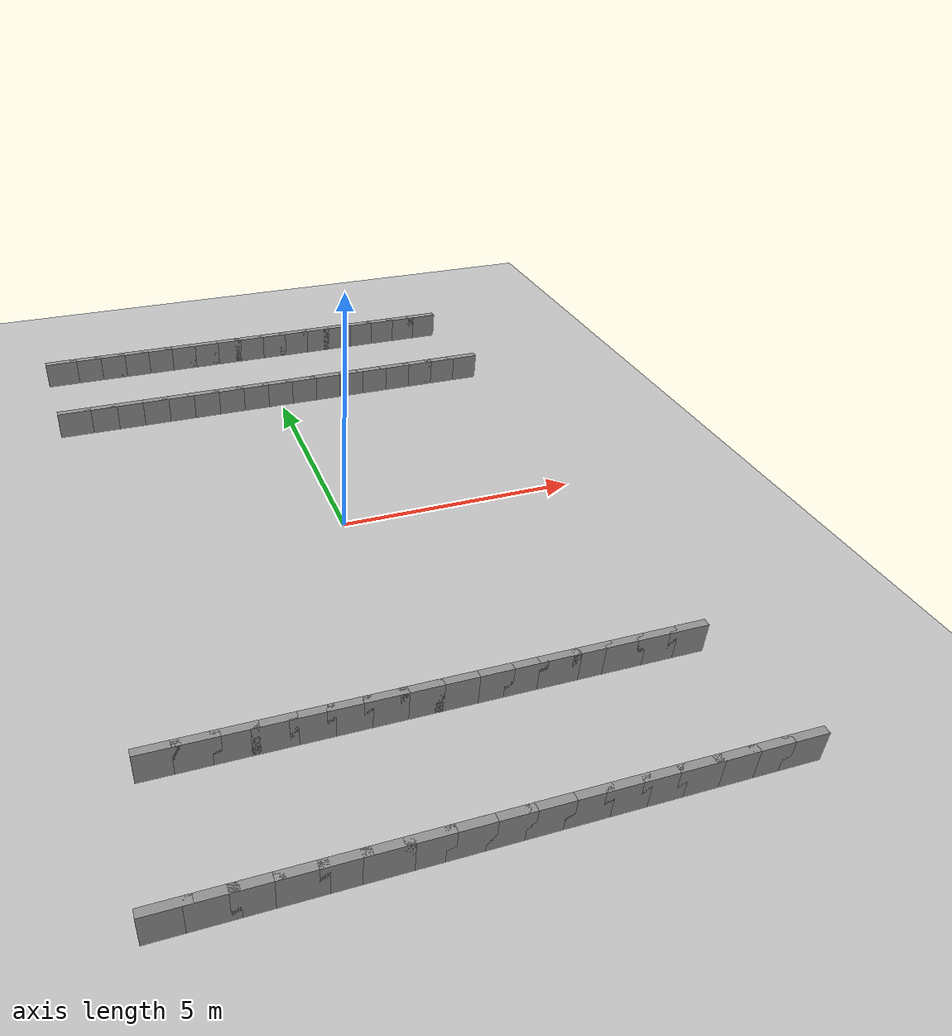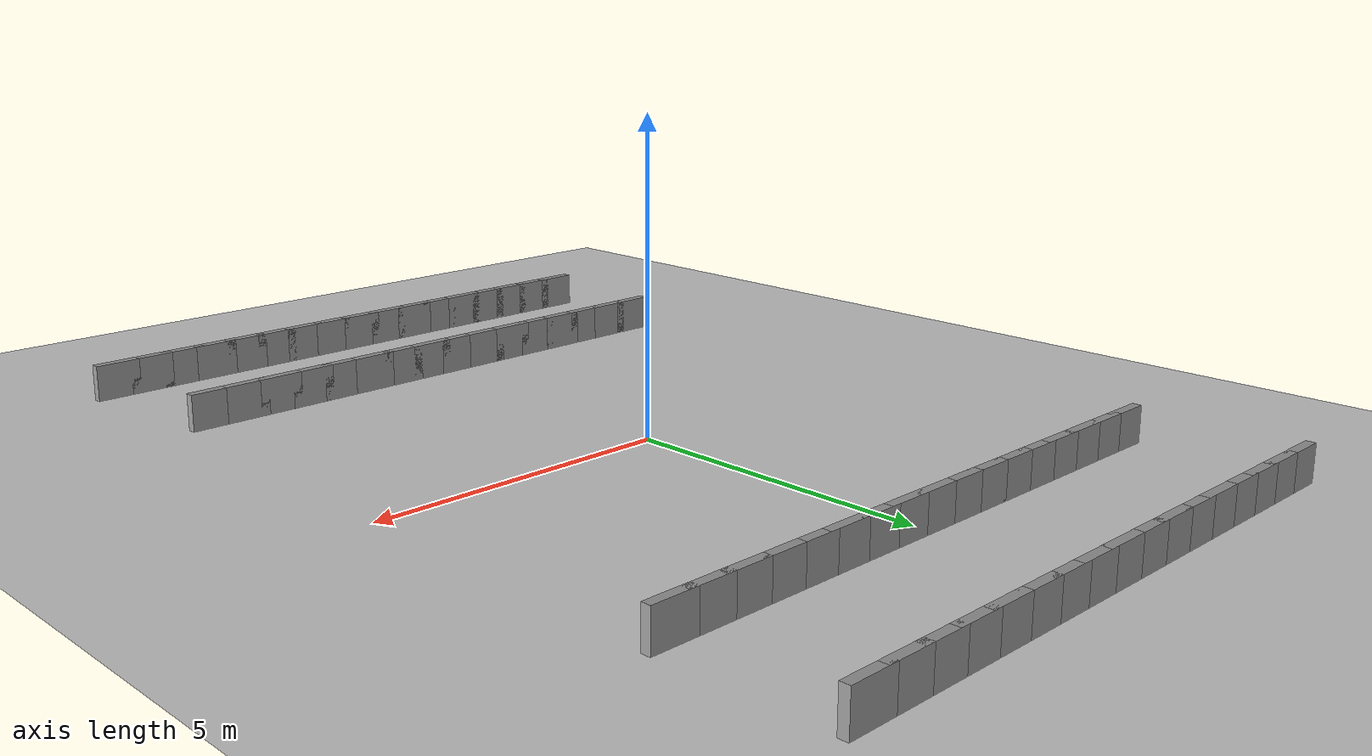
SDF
<sdf version="1.7">
 <world name="default">
  <model name="ground_plane">
   <static>1</static>
   <link name="link">
    <collision name="collision">
     <geometry><plane><normal>0 0 1</normal><size>100 100</size></plane></geometry>
     <surface><friction><ode><mu>100</mu><mu2>50</mu2></ode></friction></surface>
    </collision>
    <visual name="visual">
     <cast_shadows>0</cast_shadows>
     <geometry><plane><normal>0 0 1</normal><size>100 100</size></plane></geometry>
     <material>
      <script><uri>file://media/materials/scripts/gazebo.material</uri><name>Gazebo/Grey</name></script>
     </material>
    </visual>
   </link>
  </model>
  <model name="rand_rrect_02">
   <link name="Wall_7">
    <collision name="Wall_7_Collision">
     <geometry><box><size>0.7500 0.1500 0.6000</size></box></geometry>
     <pose>0 0 0.3000 0 -0 0</pose>
    </collision>
    <visual name="Wall_7_Visual">
     <pose>0 0 0.3000 0 -0 0</pose>
     <geometry><box><size>0.7500 0.1500 0.6000</size></box></geometry>
     <material>
      <script><uri>file://media/materials/scripts/gazebo.material</uri><name>Gazebo/Grey</name></script>
      <ambient>1 1 1 1</ambient>
     </material>
    </visual>
    <pose>4.7126 5.2483 0 0 -0 3.14159</pose>
   </link>
   <link name="Wall_8">
    <collision name="Wall_8_Collision">
     <geometry><box><size>0.7500 0.1500 0.6000</size></box></geometry>
     <pose>0 0 0.3000 0 -0 0</pose>
    </collision>
    <visual name="Wall_8_Visual">
     <pose>0 0 0.3000 0 -0 0</pose>
     <geometry><box><size>0.7500 0.1500 0.6000</size></box></geometry>
     <material>
      <script><uri>file://media/materials/scripts/gazebo.material</uri><name>Gazebo/Grey</name></script>
      <ambient>1 1 1 1</ambient>
     </material>
    </visual>
    <pose>4.1126 5.2483 0 0 -0 3.14159</pose>
   </link>
   <link name="Wall_9">
    <collision name="Wall_9_Collision">
     <geometry><box><size>0.7500 0.1500 0.6000</size></box></geometry>
     <pose>0 0 0.3000 0 -0 0</pose>
    </collision>
    <visual name="Wall_9_Visual">
     <pose>0 0 0.3000 0 -0 0</pose>
     <geometry><box><size>0.7500 0.1500 0.6000</size></box></geometry>
     <material>
      <script><uri>file://media/materials/scripts/gazebo.material</uri><name>Gazebo/Grey</name></script>
      <ambient>1 1 1 1</ambient>
     </material>
    </visual>
    <pose>3.5126 5.2483 0 0 -0 3.14159</pose>
   </link>
   <link name="Wall_10">
    <collision name="Wall_10_Collision">
     <geometry><box><size>0.7500 0.1500 0.6000</size></box></geometry>
     <pose>0 0 0.3000 0 -0 0</pose>
    </collision>
    <visual name="Wall_10_Visual">
     <pose>0 0 0.3000 0 -0 0</pose>
     <geometry><box><size>0.7500 0.1500 0.6000</size></box></geometry>
     <material>
      <script><uri>file://media/materials/scripts/gazebo.material</uri><name>Gazebo/Grey</name></script>
      <ambient>1 1 1 1</ambient>
     </material>
    </visual>
    <pose>2.9126 5.2483 0 0 -0 3.14159</pose>
   </link>
   <link name="Wall_11">
    <collision name="Wall_11_Collision">
     <geometry><box><size>0.7500 0.1500 0.6000</size></box></geometry>
     <pose>0 0 0.3000 0 -0 0</pose>
    </collision>
    <visual name="Wall_11_Visual">
     <pose>0 0 0.3000 0 -0 0</pose>
     <geometry><box><size>0.7500 0.1500 0.6000</size></box></geometry>
     <material>
      <script><uri>file://media/materials/scripts/gazebo.material</uri><name>Gazebo/Grey</name></script>
      <ambient>1 1 1 1</ambient>
     </material>
    </visual>
    <pose>2.3126 5.2483 0 0 -0 3.14159</pose>
   </link>
   <link name="Wall_12">
    <collision name="Wall_12_Collision">
     <geometry><box><size>0.7500 0.1500 0.6000</size></box></geometry>
     <pose>0 0 0.3000 0 -0 0</pose>
    </collision>
    <visual name="Wall_12_Visual">
     <pose>0 0 0.3000 0 -0 0</pose>
     <geometry><box><size>0.7500 0.1500 0.6000</size></box></geometry>
     <material>
      <script><uri>file://media/materials/scripts/gazebo.material</uri><name>Gazebo/Grey</name></script>
      <ambient>1 1 1 1</ambient>
     </material>
    </visual>
    <pose>1.7126 5.2483 0 0 -0 3.14159</pose>
   </link>
   <link name="Wall_13">
    <collision name="Wall_13_Collision">
     <geometry><box><size>0.7500 0.1500 0.6000</size></box></geometry>
     <pose>0 0 0.3000 0 -0 0</pose>
    </collision>
    <visual name="Wall_13_Visual">
     <pose>0 0 0.3000 0 -0 0</pose>
     <geometry><box><size>0.7500 0.1500 0.6000</size></box></geometry>
     <material>
      <script><uri>file://media/materials/scripts/gazebo.material</uri><name>Gazebo/Grey</name></script>
      <ambient>1 1 1 1</ambient>
     </material>
    </visual>
    <pose>1.1126 5.2483 0 0 -0 3.14159</pose>
   </link>
   <link name="Wall_14">
    <collision name="Wall_14_Collision">
     <geometry><box><size>0.7500 0.1500 0.6000</size></box></geometry>
     <pose>0 0 0.3000 0 -0 0</pose>
    </collision>
    <visual name="Wall_14_Visual">
     <pose>0 0 0.3000 0 -0 0</pose>
     <geometry><box><size>0.7500 0.1500 0.6000</size></box></geometry>
     <material>
      <script><uri>file://media/materials/scripts/gazebo.material</uri><name>Gazebo/Grey</name></script>
      <ambient>1 1 1 1</ambient>
     </material>
    </visual>
    <pose>0.5126 5.2483 0 0 -0 3.14159</pose>
   </link>
   <link name="Wall_15">
    <collision name="Wall_15_Collision">
     <geometry><box><size>0.7500 0.1500 0.6000</size></box></geometry>
     <pose>0 0 0.3000 0 -0 0</pose>
    </collision>
    <visual name="Wall_15_Visual">
     <pose>0 0 0.3000 0 -0 0</pose>
     <geometry><box><size>0.7500 0.1500 0.6000</size></box></geometry>
     <material>
      <script><uri>file://media/materials/scripts/gazebo.material</uri><name>Gazebo/Grey</name></script>
      <ambient>1 1 1 1</ambient>
     </material>
    </visual>
    <pose>-0.0874 5.2483 0 0 -0 3.14159</pose>
   </link>
   <link name="Wall_16">
    <collision name="Wall_16_Collision">
     <geometry><box><size>0.7500 0.1500 0.6000</size></box></geometry>
     <pose>0 0 0.3000 0 -0 0</pose>
    </collision>
    <visual name="Wall_16_Visual">
     <pose>0 0 0.3000 0 -0 0</pose>
     <geometry><box><size>0.7500 0.1500 0.6000</size></box></geometry>
     <material>
      <script><uri>file://media/materials/scripts/gazebo.material</uri><name>Gazebo/Grey</name></script>
      <ambient>1 1 1 1</ambient>
     </material>
    </visual>
    <pose>-0.6874 5.2483 0 0 -0 3.14159</pose>
   </link>
   <link name="Wall_17">
    <collision name="Wall_17_Collision">
     <geometry><box><size>0.7500 0.1500 0.6000</size></box></geometry>
     <pose>0 0 0.3000 0 -0 0</pose>
    </collision>
    <visual name="Wall_17_Visual">
     <pose>0 0 0.3000 0 -0 0</pose>
     <geometry><box><size>0.7500 0.1500 0.6000</size></box></geometry>
     <material>
      <script><uri>file://media/materials/scripts/gazebo.material</uri><name>Gazebo/Grey</name></script>
      <ambient>1 1 1 1</ambient>
     </material>
    </visual>
    <pose>-1.2874 5.2483 0 0 -0 3.14159</pose>
   </link>
   <link name="Wall_18">
    <collision name="Wall_18_Collision">
     <geometry><box><size>0.7500 0.1500 0.6000</size></box></geometry>
     <pose>0 0 0.3000 0 -0 0</pose>
    </collision>
    <visual name="Wall_18_Visual">
     <pose>0 0 0.3000 0 -0 0</pose>
     <geometry><box><size>0.7500 0.1500 0.6000</size></box></geometry>
     <material>
      <script><uri>file://media/materials/scripts/gazebo.material</uri><name>Gazebo/Grey</name></script>
      <ambient>1 1 1 1</ambient>
     </material>
    </visual>
    <pose>-1.8874 5.2483 0 0 -0 3.14159</pose>
   </link>
   <link name="Wall_19">
    <collision name="Wall_19_Collision">
     <geometry><box><size>0.7500 0.1500 0.6000</size></box></geometry>
     <pose>0 0 0.3000 0 -0 0</pose>
    </collision>
    <visual name="Wall_19_Visual">
     <pose>0 0 0.3000 0 -0 0</pose>
     <geometry><box><size>0.7500 0.1500 0.6000</size></box></geometry>
     <material>
      <script><uri>file://media/materials/scripts/gazebo.material</uri><name>Gazebo/Grey</name></script>
      <ambient>1 1 1 1</ambient>
     </material>
    </visual>
    <pose>-2.4874 5.2483 0 0 -0 3.14159</pose>
   </link>
   <link name="Wall_20">
    <collision name="Wall_20_Collision">
     <geometry><box><size>0.7500 0.1500 0.6000</size></box></geometry>
     <pose>0 0 0.3000 0 -0 0</pose>
    </collision>
    <visual name="Wall_20_Visual">
     <pose>0 0 0.3000 0 -0 0</pose>
     <geometry><box><size>0.7500 0.1500 0.6000</size></box></geometry>
     <material>
      <script><uri>file://media/materials/scripts/gazebo.material</uri><name>Gazebo/Grey</name></script>
      <ambient>1 1 1 1</ambient>
     </material>
    </visual>
    <pose>-3.0874 5.2483 0 0 -0 3.14159</pose>
   </link>
   <link name="Wall_21">
    <collision name="Wall_21_Collision">
     <geometry><box><size>0.7500 0.1500 0.6000</size></box></geometry>
     <pose>0 0 0.3000 0 -0 0</pose>
    </collision>
    <visual name="Wall_21_Visual">
     <pose>0 0 0.3000 0 -0 0</pose>
     <geometry><box><size>0.7500 0.1500 0.6000</size></box></geometry>
     <material>
      <script><uri>file://media/materials/scripts/gazebo.material</uri><name>Gazebo/Grey</name></script>
      <ambient>1 1 1 1</ambient>
     </material>
    </visual>
    <pose>-3.6874 5.2483 0 0 -0 3.14159</pose>
   </link>
   <link name="Wall_22">
    <collision name="Wall_22_Collision">
     <geometry><box><size>0.7500 0.1500 0.6000</size></box></geometry>
     <pose>0 0 0.3000 0 -0 0</pose>
    </collision>
    <visual name="Wall_22_Visual">
     <pose>0 0 0.3000 0 -0 0</pose>
     <geometry><box><size>0.7500 0.1500 0.6000</size></box></geometry>
     <material>
      <script><uri>file://media/materials/scripts/gazebo.material</uri><name>Gazebo/Grey</name></script>
      <ambient>1 1 1 1</ambient>
     </material>
    </visual>
    <pose>-4.2874 5.2483 0 0 -0 3.14159</pose>
   </link>
   <link name="Wall_23">
    <collision name="Wall_23_Collision">
     <geometry><box><size>0.7500 0.1500 0.6000</size></box></geometry>
     <pose>0 0 0.3000 0 -0 0</pose>
    </collision>
    <visual name="Wall_23_Visual">
     <pose>0 0 0.3000 0 -0 0</pose>
     <geometry><box><size>0.7500 0.1500 0.6000</size></box></geometry>
     <material>
      <script><uri>file://media/materials/scripts/gazebo.material</uri><name>Gazebo/Grey</name></script>
      <ambient>1 1 1 1</ambient>
     </material>
    </visual>
    <pose>-4.8874 5.2483 0 0 -0 3.14159</pose>
   </link>
   <link name="Wall_51">
    <collision name="Wall_51_Collision">
     <geometry><box><size>0.7500 0.1500 0.6000</size></box></geometry>
     <pose>0 0 0.3000 0 -0 0</pose>
    </collision>
    <visual name="Wall_51_Visual">
     <pose>0 0 0.3000 0 -0 0</pose>
     <geometry><box><size>0.7500 0.1500 0.6000</size></box></geometry>
     <material>
      <script><uri>file://media/materials/scripts/gazebo.material</uri><name>Gazebo/Grey</name></script>
      <ambient>1 1 1 1</ambient>
     </material>
    </visual>
    <pose>-4.5552 -5.2483 0 0 -0 0.00000</pose>
   </link>
   <link name="Wall_52">
    <collision name="Wall_52_Collision">
     <geometry><box><size>0.7500 0.1500 0.6000</size></box></geometry>
     <pose>0 0 0.3000 0 -0 0</pose>
    </collision>
    <visual name="Wall_52_Visual">
     <pose>0 0 0.3000 0 -0 0</pose>
     <geometry><box><size>0.7500 0.1500 0.6000</size></box></geometry>
     <material>
      <script><uri>file://media/materials/scripts/gazebo.material</uri><name>Gazebo/Grey</name></script>
      <ambient>1 1 1 1</ambient>
     </material>
    </visual>
    <pose>-3.9552 -5.2483 0 0 -0 0.00000</pose>
   </link>
   <link name="Wall_53">
    <collision name="Wall_53_Collision">
     <geometry><box><size>0.7500 0.1500 0.6000</size></box></geometry>
     <pose>0 0 0.3000 0 -0 0</pose>
    </collision>
    <visual name="Wall_53_Visual">
     <pose>0 0 0.3000 0 -0 0</pose>
     <geometry><box><size>0.7500 0.1500 0.6000</size></box></geometry>
     <material>
      <script><uri>file://media/materials/scripts/gazebo.material</uri><name>Gazebo/Grey</name></script>
      <ambient>1 1 1 1</ambient>
     </material>
    </visual>
    <pose>-3.3552 -5.2483 0 0 -0 0.00000</pose>
   </link>
   <link name="Wall_54">
    <collision name="Wall_54_Collision">
     <geometry><box><size>0.7500 0.1500 0.6000</size></box></geometry>
     <pose>0 0 0.3000 0 -0 0</pose>
    </collision>
    <visual name="Wall_54_Visual">
     <pose>0 0 0.3000 0 -0 0</pose>
     <geometry><box><size>0.7500 0.1500 0.6000</size></box></geometry>
     <material>
      <script><uri>file://media/materials/scripts/gazebo.material</uri><name>Gazebo/Grey</name></script>
      <ambient>1 1 1 1</ambient>
     </material>
    </visual>
    <pose>-2.7552 -5.2483 0 0 -0 0.00000</pose>
   </link>
   <link name="Wall_55">
    <collision name="Wall_55_Collision">
     <geometry><box><size>0.7500 0.1500 0.6000</size></box></geometry>
     <pose>0 0 0.3000 0 -0 0</pose>
    </collision>
    <visual name="Wall_55_Visual">
     <pose>0 0 0.3000 0 -0 0</pose>
     <geometry><box><size>0.7500 0.1500 0.6000</size></box></geometry>
     <material>
      <script><uri>file://media/materials/scripts/gazebo.material</uri><name>Gazebo/Grey</name></script>
      <ambient>1 1 1 1</ambient>
     </material>
    </visual>
    <pose>-2.1552 -5.2483 0 0 -0 0.00000</pose>
   </link>
   <link name="Wall_56">
    <collision name="Wall_56_Collision">
     <geometry><box><size>0.7500 0.1500 0.6000</size></box></geometry>
     <pose>0 0 0.3000 0 -0 0</pose>
    </collision>
    <visual name="Wall_56_Visual">
     <pose>0 0 0.3000 0 -0 0</pose>
     <geometry><box><size>0.7500 0.1500 0.6000</size></box></geometry>
     <material>
      <script><uri>file://media/materials/scripts/gazebo.material</uri><name>Gazebo/Grey</name></script>
      <ambient>1 1 1 1</ambient>
     </material>
    </visual>
    <pose>-1.5552 -5.2483 0 0 -0 0.00000</pose>
   </link>
   <link name="Wall_57">
    <collision name="Wall_57_Collision">
     <geometry><box><size>0.7500 0.1500 0.6000</size></box></geometry>
     <pose>0 0 0.3000 0 -0 0</pose>
    </collision>
    <visual name="Wall_57_Visual">
     <pose>0 0 0.3000 0 -0 0</pose>
     <geometry><box><size>0.7500 0.1500 0.6000</size></box></geometry>
     <material>
      <script><uri>file://media/materials/scripts/gazebo.material</uri><name>Gazebo/Grey</name></script>
      <ambient>1 1 1 1</ambient>
     </material>
    </visual>
    <pose>-0.9552 -5.2483 0 0 -0 0.00000</pose>
   </link>
   <link name="Wall_58">
    <collision name="Wall_58_Collision">
     <geometry><box><size>0.7500 0.1500 0.6000</size></box></geometry>
     <pose>0 0 0.3000 0 -0 0</pose>
    </collision>
    <visual name="Wall_58_Visual">
     <pose>0 0 0.3000 0 -0 0</pose>
     <geometry><box><size>0.7500 0.1500 0.6000</size></box></geometry>
     <material>
      <script><uri>file://media/materials/scripts/gazebo.material</uri><name>Gazebo/Grey</name></script>
      <ambient>1 1 1 1</ambient>
     </material>
    </visual>
    <pose>-0.3552 -5.2483 0 0 -0 0.00000</pose>
   </link>
   <link name="Wall_59">
    <collision name="Wall_59_Collision">
     <geometry><box><size>0.7500 0.1500 0.6000</size></box></geometry>
     <pose>0 0 0.3000 0 -0 0</pose>
    </collision>
    <visual name="Wall_59_Visual">
     <pose>0 0 0.3000 0 -0 0</pose>
     <geometry><box><size>0.7500 0.1500 0.6000</size></box></geometry>
     <material>
      <script><uri>file://media/materials/scripts/gazebo.material</uri><name>Gazebo/Grey</name></script>
      <ambient>1 1 1 1</ambient>
     </material>
    </visual>
    <pose>0.2448 -5.2483 0 0 -0 0.00000</pose>
   </link>
   <link name="Wall_60">
    <collision name="Wall_60_Collision">
     <geometry><box><size>0.7500 0.1500 0.6000</size></box></geometry>
     <pose>0 0 0.3000 0 -0 0</pose>
    </collision>
    <visual name="Wall_60_Visual">
     <pose>0 0 0.3000 0 -0 0</pose>
     <geometry><box><size>0.7500 0.1500 0.6000</size></box></geometry>
     <material>
      <script><uri>file://media/materials/scripts/gazebo.material</uri><name>Gazebo/Grey</name></script>
      <ambient>1 1 1 1</ambient>
     </material>
    </visual>
    <pose>0.8448 -5.2483 0 0 -0 0.00000</pose>
   </link>
   <link name="Wall_61">
    <collision name="Wall_61_Collision">
     <geometry><box><size>0.7500 0.1500 0.6000</size></box></geometry>
     <pose>0 0 0.3000 0 -0 0</pose>
    </collision>
    <visual name="Wall_61_Visual">
     <pose>0 0 0.3000 0 -0 0</pose>
     <geometry><box><size>0.7500 0.1500 0.6000</size></box></geometry>
     <material>
      <script><uri>file://media/materials/scripts/gazebo.material</uri><name>Gazebo/Grey</name></script>
      <ambient>1 1 1 1</ambient>
     </material>
    </visual>
    <pose>1.4448 -5.2483 0 0 -0 0.00000</pose>
   </link>
   <link name="Wall_62">
    <collision name="Wall_62_Collision">
     <geometry><box><size>0.7500 0.1500 0.6000</size></box></geometry>
     <pose>0 0 0.3000 0 -0 0</pose>
    </collision>
    <visual name="Wall_62_Visual">
     <pose>0 0 0.3000 0 -0 0</pose>
     <geometry><box><size>0.7500 0.1500 0.6000</size></box></geometry>
     <material>
      <script><uri>file://media/materials/scripts/gazebo.material</uri><name>Gazebo/Grey</name></script>
      <ambient>1 1 1 1</ambient>
     </material>
    </visual>
    <pose>2.0448 -5.2483 0 0 -0 0.00000</pose>
   </link>
   <link name="Wall_63">
    <collision name="Wall_63_Collision">
     <geometry><box><size>0.7500 0.1500 0.6000</size></box></geometry>
     <pose>0 0 0.3000 0 -0 0</pose>
    </collision>
    <visual name="Wall_63_Visual">
     <pose>0 0 0.3000 0 -0 0</pose>
     <geometry><box><size>0.7500 0.1500 0.6000</size></box></geometry>
     <material>
      <script><uri>file://media/materials/scripts/gazebo.material</uri><name>Gazebo/Grey</name></script>
      <ambient>1 1 1 1</ambient>
     </material>
    </visual>
    <pose>2.6448 -5.2483 0 0 -0 0.00000</pose>
   </link>
   <link name="Wall_64">
    <collision name="Wall_64_Collision">
     <geometry><box><size>0.7500 0.1500 0.6000</size></box></geometry>
     <pose>0 0 0.3000 0 -0 0</pose>
    </collision>
    <visual name="Wall_64_Visual">
     <pose>0 0 0.3000 0 -0 0</pose>
     <geometry><box><size>0.7500 0.1500 0.6000</size></box></geometry>
     <material>
      <script><uri>file://media/materials/scripts/gazebo.material</uri><name>Gazebo/Grey</name></script>
      <ambient>1 1 1 1</ambient>
     </material>
    </visual>
    <pose>3.2448 -5.2483 0 0 -0 0.00000</pose>
   </link>
   <link name="Wall_65">
    <collision name="Wall_65_Collision">
     <geometry><box><size>0.7500 0.1500 0.6000</size></box></geometry>
     <pose>0 0 0.3000 0 -0 0</pose>
    </collision>
    <visual name="Wall_65_Visual">
     <pose>0 0 0.3000 0 -0 0</pose>
     <geometry><box><size>0.7500 0.1500 0.6000</size></box></geometry>
     <material>
      <script><uri>file://media/materials/scripts/gazebo.material</uri><name>Gazebo/Grey</name></script>
      <ambient>1 1 1 1</ambient>
     </material>
    </visual>
    <pose>3.8448 -5.2483 0 0 -0 0.00000</pose>
   </link>
   <link name="Wall_66">
    <collision name="Wall_66_Collision">
     <geometry><box><size>0.7500 0.1500 0.6000</size></box></geometry>
     <pose>0 0 0.3000 0 -0 0</pose>
    </collision>
    <visual name="Wall_66_Visual">
     <pose>0 0 0.3000 0 -0 0</pose>
     <geometry><box><size>0.7500 0.1500 0.6000</size></box></geometry>
     <material>
      <script><uri>file://media/materials/scripts/gazebo.material</uri><name>Gazebo/Grey</name></script>
      <ambient>1 1 1 1</ambient>
     </material>
    </visual>
    <pose>4.4448 -5.2483 0 0 -0 0.00000</pose>
   </link>
   <link name="Wall_101">
    <collision name="Wall_101_Collision">
     <geometry><box><size>0.7500 0.1500 0.6000</size></box></geometry>
     <pose>0 0 0.3000 0 -0 0</pose>
    </collision>
    <visual name="Wall_101_Visual">
     <pose>0 0 0.3000 0 -0 0</pose>
     <geometry><box><size>0.7500 0.1500 0.6000</size></box></geometry>
     <material>
      <script><uri>file://media/materials/scripts/gazebo.material</uri><name>Gazebo/Grey</name></script>
      <ambient>1 1 1 1</ambient>
     </material>
    </visual>
    <pose>4.6031 7.8524 0 0 -0 3.14159</pose>
   </link>
   <link name="Wall_102">
    <collision name="Wall_102_Collision">
     <geometry><box><size>0.7500 0.1500 0.6000</size></box></geometry>
     <pose>0 0 0.3000 0 -0 0</pose>
    </collision>
    <visual name="Wall_102_Visual">
     <pose>0 0 0.3000 0 -0 0</pose>
     <geometry><box><size>0.7500 0.1500 0.6000</size></box></geometry>
     <material>
      <script><uri>file://media/materials/scripts/gazebo.material</uri><name>Gazebo/Grey</name></script>
      <ambient>1 1 1 1</ambient>
     </material>
    </visual>
    <pose>4.0031 7.8524 0 0 -0 3.14159</pose>
   </link>
   <link name="Wall_103">
    <collision name="Wall_103_Collision">
     <geometry><box><size>0.7500 0.1500 0.6000</size></box></geometry>
     <pose>0 0 0.3000 0 -0 0</pose>
    </collision>
    <visual name="Wall_103_Visual">
     <pose>0 0 0.3000 0 -0 0</pose>
     <geometry><box><size>0.7500 0.1500 0.6000</size></box></geometry>
     <material>
      <script><uri>file://media/materials/scripts/gazebo.material</uri><name>Gazebo/Grey</name></script>
      <ambient>1 1 1 1</ambient>
     </material>
    </visual>
    <pose>3.4031 7.8524 0 0 -0 3.14159</pose>
   </link>
   <link name="Wall_104">
    <collision name="Wall_104_Collision">
     <geometry><box><size>0.7500 0.1500 0.6000</size></box></geometry>
     <pose>0 0 0.3000 0 -0 0</pose>
    </collision>
    <visual name="Wall_104_Visual">
     <pose>0 0 0.3000 0 -0 0</pose>
     <geometry><box><size>0.7500 0.1500 0.6000</size></box></geometry>
     <material>
      <script><uri>file://media/materials/scripts/gazebo.material</uri><name>Gazebo/Grey</name></script>
      <ambient>1 1 1 1</ambient>
     </material>
    </visual>
    <pose>2.8031 7.8524 0 0 -0 3.14159</pose>
   </link>
   <link name="Wall_105">
    <collision name="Wall_105_Collision">
     <geometry><box><size>0.7500 0.1500 0.6000</size></box></geometry>
     <pose>0 0 0.3000 0 -0 0</pose>
    </collision>
    <visual name="Wall_105_Visual">
     <pose>0 0 0.3000 0 -0 0</pose>
     <geometry><box><size>0.7500 0.1500 0.6000</size></box></geometry>
     <material>
      <script><uri>file://media/materials/scripts/gazebo.material</uri><name>Gazebo/Grey</name></script>
      <ambient>1 1 1 1</ambient>
     </material>
    </visual>
    <pose>2.2031 7.8524 0 0 -0 3.14159</pose>
   </link>
   <link name="Wall_106">
    <collision name="Wall_106_Collision">
     <geometry><box><size>0.7500 0.1500 0.6000</size></box></geometry>
     <pose>0 0 0.3000 0 -0 0</pose>
    </collision>
    <visual name="Wall_106_Visual">
     <pose>0 0 0.3000 0 -0 0</pose>
     <geometry><box><size>0.7500 0.1500 0.6000</size></box></geometry>
     <material>
      <script><uri>file://media/materials/scripts/gazebo.material</uri><name>Gazebo/Grey</name></script>
      <ambient>1 1 1 1</ambient>
     </material>
    </visual>
    <pose>1.6031 7.8524 0 0 -0 3.14159</pose>
   </link>
   <link name="Wall_107">
    <collision name="Wall_107_Collision">
     <geometry><box><size>0.7500 0.1500 0.6000</size></box></geometry>
     <pose>0 0 0.3000 0 -0 0</pose>
    </collision>
    <visual name="Wall_107_Visual">
     <pose>0 0 0.3000 0 -0 0</pose>
     <geometry><box><size>0.7500 0.1500 0.6000</size></box></geometry>
     <material>
      <script><uri>file://media/materials/scripts/gazebo.material</uri><name>Gazebo/Grey</name></script>
      <ambient>1 1 1 1</ambient>
     </material>
    </visual>
    <pose>1.0031 7.8524 0 0 -0 3.14159</pose>
   </link>
   <link name="Wall_108">
    <collision name="Wall_108_Collision">
     <geometry><box><size>0.7500 0.1500 0.6000</size></box></geometry>
     <pose>0 0 0.3000 0 -0 0</pose>
    </collision>
    <visual name="Wall_108_Visual">
     <pose>0 0 0.3000 0 -0 0</pose>
     <geometry><box><size>0.7500 0.1500 0.6000</size></box></geometry>
     <material>
      <script><uri>file://media/materials/scripts/gazebo.material</uri><name>Gazebo/Grey</name></script>
      <ambient>1 1 1 1</ambient>
     </material>
    </visual>
    <pose>0.4031 7.8524 0 0 -0 3.14159</pose>
   </link>
   <link name="Wall_109">
    <collision name="Wall_109_Collision">
     <geometry><box><size>0.7500 0.1500 0.6000</size></box></geometry>
     <pose>0 0 0.3000 0 -0 0</pose>
    </collision>
    <visual name="Wall_109_Visual">
     <pose>0 0 0.3000 0 -0 0</pose>
     <geometry><box><size>0.7500 0.1500 0.6000</size></box></geometry>
     <material>
      <script><uri>file://media/materials/scripts/gazebo.material</uri><name>Gazebo/Grey</name></script>
      <ambient>1 1 1 1</ambient>
     </material>
    </visual>
    <pose>-0.1969 7.8524 0 0 -0 3.14159</pose>
   </link>
   <link name="Wall_110">
    <collision name="Wall_110_Collision">
     <geometry><box><size>0.7500 0.1500 0.6000</size></box></geometry>
     <pose>0 0 0.3000 0 -0 0</pose>
    </collision>
    <visual name="Wall_110_Visual">
     <pose>0 0 0.3000 0 -0 0</pose>
     <geometry><box><size>0.7500 0.1500 0.6000</size></box></geometry>
     <material>
      <script><uri>file://media/materials/scripts/gazebo.material</uri><name>Gazebo/Grey</name></script>
      <ambient>1 1 1 1</ambient>
     </material>
    </visual>
    <pose>-0.7969 7.8524 0 0 -0 3.14159</pose>
   </link>
   <link name="Wall_111">
    <collision name="Wall_111_Collision">
     <geometry><box><size>0.7500 0.1500 0.6000</size></box></geometry>
     <pose>0 0 0.3000 0 -0 0</pose>
    </collision>
    <visual name="Wall_111_Visual">
     <pose>0 0 0.3000 0 -0 0</pose>
     <geometry><box><size>0.7500 0.1500 0.6000</size></box></geometry>
     <material>
      <script><uri>file://media/materials/scripts/gazebo.material</uri><name>Gazebo/Grey</name></script>
      <ambient>1 1 1 1</ambient>
     </material>
    </visual>
    <pose>-1.3969 7.8524 0 0 -0 3.14159</pose>
   </link>
   <link name="Wall_112">
    <collision name="Wall_112_Collision">
     <geometry><box><size>0.7500 0.1500 0.6000</size></box></geometry>
     <pose>0 0 0.3000 0 -0 0</pose>
    </collision>
    <visual name="Wall_112_Visual">
     <pose>0 0 0.3000 0 -0 0</pose>
     <geometry><box><size>0.7500 0.1500 0.6000</size></box></geometry>
     <material>
      <script><uri>file://media/materials/scripts/gazebo.material</uri><name>Gazebo/Grey</name></script>
      <ambient>1 1 1 1</ambient>
     </material>
    </visual>
    <pose>-1.9969 7.8524 0 0 -0 3.14159</pose>
   </link>
   <link name="Wall_113">
    <collision name="Wall_113_Collision">
     <geometry><box><size>0.7500 0.1500 0.6000</size></box></geometry>
     <pose>0 0 0.3000 0 -0 0</pose>
    </collision>
    <visual name="Wall_113_Visual">
     <pose>0 0 0.3000 0 -0 0</pose>
     <geometry><box><size>0.7500 0.1500 0.6000</size></box></geometry>
     <material>
      <script><uri>file://media/materials/scripts/gazebo.material</uri><name>Gazebo/Grey</name></script>
      <ambient>1 1 1 1</ambient>
     </material>
    </visual>
    <pose>-2.5969 7.8524 0 0 -0 3.14159</pose>
   </link>
   <link name="Wall_114">
    <collision name="Wall_114_Collision">
     <geometry><box><size>0.7500 0.1500 0.6000</size></box></geometry>
     <pose>0 0 0.3000 0 -0 0</pose>
    </collision>
    <visual name="Wall_114_Visual">
     <pose>0 0 0.3000 0 -0 0</pose>
     <geometry><box><size>0.7500 0.1500 0.6000</size></box></geometry>
     <material>
      <script><uri>file://media/materials/scripts/gazebo.material</uri><name>Gazebo/Grey</name></script>
      <ambient>1 1 1 1</ambient>
     </material>
    </visual>
    <pose>-3.1969 7.8524 0 0 -0 3.14159</pose>
   </link>
   <link name="Wall_115">
    <collision name="Wall_115_Collision">
     <geometry><box><size>0.7500 0.1500 0.6000</size></box></geometry>
     <pose>0 0 0.3000 0 -0 0</pose>
    </collision>
    <visual name="Wall_115_Visual">
     <pose>0 0 0.3000 0 -0 0</pose>
     <geometry><box><size>0.7500 0.1500 0.6000</size></box></geometry>
     <material>
      <script><uri>file://media/materials/scripts/gazebo.material</uri><name>Gazebo/Grey</name></script>
      <ambient>1 1 1 1</ambient>
     </material>
    </visual>
    <pose>-3.7969 7.8524 0 0 -0 3.14159</pose>
   </link>
   <link name="Wall_116">
    <collision name="Wall_116_Collision">
     <geometry><box><size>0.7500 0.1500 0.6000</size></box></geometry>
     <pose>0 0 0.3000 0 -0 0</pose>
    </collision>
    <visual name="Wall_116_Visual">
     <pose>0 0 0.3000 0 -0 0</pose>
     <geometry><box><size>0.7500 0.1500 0.6000</size></box></geometry>
     <material>
      <script><uri>file://media/materials/scripts/gazebo.material</uri><name>Gazebo/Grey</name></script>
      <ambient>1 1 1 1</ambient>
     </material>
    </visual>
    <pose>-4.3969 7.8524 0 0 -0 3.14159</pose>
   </link>
   <link name="Wall_117">
    <collision name="Wall_117_Collision">
     <geometry><box><size>0.7500 0.1500 0.6000</size></box></geometry>
     <pose>0 0 0.3000 0 -0 0</pose>
    </collision>
    <visual name="Wall_117_Visual">
     <pose>0 0 0.3000 0 -0 0</pose>
     <geometry><box><size>0.7500 0.1500 0.6000</size></box></geometry>
     <material>
      <script><uri>file://media/materials/scripts/gazebo.material</uri><name>Gazebo/Grey</name></script>
      <ambient>1 1 1 1</ambient>
     </material>
    </visual>
    <pose>-4.9969 7.8524 0 0 -0 3.14159</pose>
   </link>
   <link name="Wall_158">
    <collision name="Wall_158_Collision">
     <geometry><box><size>0.7500 0.1500 0.6000</size></box></geometry>
     <pose>0 0 0.3000 0 -0 0</pose>
    </collision>
    <visual name="Wall_158_Visual">
     <pose>0 0 0.3000 0 -0 0</pose>
     <geometry><box><size>0.7500 0.1500 0.6000</size></box></geometry>
     <material>
      <script><uri>file://media/materials/scripts/gazebo.material</uri><name>Gazebo/Grey</name></script>
      <ambient>1 1 1 1</ambient>
     </material>
    </visual>
    <pose>-4.8266 -7.8524 0 0 -0 0.00000</pose>
   </link>
   <link name="Wall_159">
    <collision name="Wall_159_Collision">
     <geometry><box><size>0.7500 0.1500 0.6000</size></box></geometry>
     <pose>0 0 0.3000 0 -0 0</pose>
    </collision>
    <visual name="Wall_159_Visual">
     <pose>0 0 0.3000 0 -0 0</pose>
     <geometry><box><size>0.7500 0.1500 0.6000</size></box></geometry>
     <material>
      <script><uri>file://media/materials/scripts/gazebo.material</uri><name>Gazebo/Grey</name></script>
      <ambient>1 1 1 1</ambient>
     </material>
    </visual>
    <pose>-4.2266 -7.8524 0 0 -0 0.00000</pose>
   </link>
   <link name="Wall_160">
    <collision name="Wall_160_Collision">
     <geometry><box><size>0.7500 0.1500 0.6000</size></box></geometry>
     <pose>0 0 0.3000 0 -0 0</pose>
    </collision>
    <visual name="Wall_160_Visual">
     <pose>0 0 0.3000 0 -0 0</pose>
     <geometry><box><size>0.7500 0.1500 0.6000</size></box></geometry>
     <material>
      <script><uri>file://media/materials/scripts/gazebo.material</uri><name>Gazebo/Grey</name></script>
      <ambient>1 1 1 1</ambient>
     </material>
    </visual>
    <pose>-3.6266 -7.8524 0 0 -0 0.00000</pose>
   </link>
   <link name="Wall_161">
    <collision name="Wall_161_Collision">
     <geometry><box><size>0.7500 0.1500 0.6000</size></box></geometry>
     <pose>0 0 0.3000 0 -0 0</pose>
    </collision>
    <visual name="Wall_161_Visual">
     <pose>0 0 0.3000 0 -0 0</pose>
     <geometry><box><size>0.7500 0.1500 0.6000</size></box></geometry>
     <material>
      <script><uri>file://media/materials/scripts/gazebo.material</uri><name>Gazebo/Grey</name></script>
      <ambient>1 1 1 1</ambient>
     </material>
    </visual>
    <pose>-3.0266 -7.8524 0 0 -0 0.00000</pose>
   </link>
   <link name="Wall_162">
    <collision name="Wall_162_Collision">
     <geometry><box><size>0.7500 0.1500 0.6000</size></box></geometry>
     <pose>0 0 0.3000 0 -0 0</pose>
    </collision>
    <visual name="Wall_162_Visual">
     <pose>0 0 0.3000 0 -0 0</pose>
     <geometry><box><size>0.7500 0.1500 0.6000</size></box></geometry>
     <material>
      <script><uri>file://media/materials/scripts/gazebo.material</uri><name>Gazebo/Grey</name></script>
      <ambient>1 1 1 1</ambient>
     </material>
    </visual>
    <pose>-2.4266 -7.8524 0 0 -0 0.00000</pose>
   </link>
   <link name="Wall_163">
    <collision name="Wall_163_Collision">
     <geometry><box><size>0.7500 0.1500 0.6000</size></box></geometry>
     <pose>0 0 0.3000 0 -0 0</pose>
    </collision>
    <visual name="Wall_163_Visual">
     <pose>0 0 0.3000 0 -0 0</pose>
     <geometry><box><size>0.7500 0.1500 0.6000</size></box></geometry>
     <material>
      <script><uri>file://media/materials/scripts/gazebo.material</uri><name>Gazebo/Grey</name></script>
      <ambient>1 1 1 1</ambient>
     </material>
    </visual>
    <pose>-1.8266 -7.8524 0 0 -0 0.00000</pose>
   </link>
   <link name="Wall_164">
    <collision name="Wall_164_Collision">
     <geometry><box><size>0.7500 0.1500 0.6000</size></box></geometry>
     <pose>0 0 0.3000 0 -0 0</pose>
    </collision>
    <visual name="Wall_164_Visual">
     <pose>0 0 0.3000 0 -0 0</pose>
     <geometry><box><size>0.7500 0.1500 0.6000</size></box></geometry>
     <material>
      <script><uri>file://media/materials/scripts/gazebo.material</uri><name>Gazebo/Grey</name></script>
      <ambient>1 1 1 1</ambient>
     </material>
    </visual>
    <pose>-1.2266 -7.8524 0 0 -0 0.00000</pose>
   </link>
   <link name="Wall_165">
    <collision name="Wall_165_Collision">
     <geometry><box><size>0.7500 0.1500 0.6000</size></box></geometry>
     <pose>0 0 0.3000 0 -0 0</pose>
    </collision>
    <visual name="Wall_165_Visual">
     <pose>0 0 0.3000 0 -0 0</pose>
     <geometry><box><size>0.7500 0.1500 0.6000</size></box></geometry>
     <material>
      <script><uri>file://media/materials/scripts/gazebo.material</uri><name>Gazebo/Grey</name></script>
      <ambient>1 1 1 1</ambient>
     </material>
    </visual>
    <pose>-0.6266 -7.8524 0 0 -0 0.00000</pose>
   </link>
   <link name="Wall_166">
    <collision name="Wall_166_Collision">
     <geometry><box><size>0.7500 0.1500 0.6000</size></box></geometry>
     <pose>0 0 0.3000 0 -0 0</pose>
    </collision>
    <visual name="Wall_166_Visual">
     <pose>0 0 0.3000 0 -0 0</pose>
     <geometry><box><size>0.7500 0.1500 0.6000</size></box></geometry>
     <material>
      <script><uri>file://media/materials/scripts/gazebo.material</uri><name>Gazebo/Grey</name></script>
      <ambient>1 1 1 1</ambient>
     </material>
    </visual>
    <pose>-0.0266 -7.8524 0 0 -0 0.00000</pose>
   </link>
   <link name="Wall_167">
    <collision name="Wall_167_Collision">
     <geometry><box><size>0.7500 0.1500 0.6000</size></box></geometry>
     <pose>0 0 0.3000 0 -0 0</pose>
    </collision>
    <visual name="Wall_167_Visual">
     <pose>0 0 0.3000 0 -0 0</pose>
     <geometry><box><size>0.7500 0.1500 0.6000</size></box></geometry>
     <material>
      <script><uri>file://media/materials/scripts/gazebo.material</uri><name>Gazebo/Grey</name></script>
      <ambient>1 1 1 1</ambient>
     </material>
    </visual>
    <pose>0.5734 -7.8524 0 0 -0 0.00000</pose>
   </link>
   <link name="Wall_168">
    <collision name="Wall_168_Collision">
     <geometry><box><size>0.7500 0.1500 0.6000</size></box></geometry>
     <pose>0 0 0.3000 0 -0 0</pose>
    </collision>
    <visual name="Wall_168_Visual">
     <pose>0 0 0.3000 0 -0 0</pose>
     <geometry><box><size>0.7500 0.1500 0.6000</size></box></geometry>
     <material>
      <script><uri>file://media/materials/scripts/gazebo.material</uri><name>Gazebo/Grey</name></script>
      <ambient>1 1 1 1</ambient>
     </material>
    </visual>
    <pose>1.1734 -7.8524 0 0 -0 0.00000</pose>
   </link>
   <link name="Wall_169">
    <collision name="Wall_169_Collision">
     <geometry><box><size>0.7500 0.1500 0.6000</size></box></geometry>
     <pose>0 0 0.3000 0 -0 0</pose>
    </collision>
    <visual name="Wall_169_Visual">
     <pose>0 0 0.3000 0 -0 0</pose>
     <geometry><box><size>0.7500 0.1500 0.6000</size></box></geometry>
     <material>
      <script><uri>file://media/materials/scripts/gazebo.material</uri><name>Gazebo/Grey</name></script>
      <ambient>1 1 1 1</ambient>
     </material>
    </visual>
    <pose>1.7734 -7.8524 0 0 -0 0.00000</pose>
   </link>
   <link name="Wall_170">
    <collision name="Wall_170_Collision">
     <geometry><box><size>0.7500 0.1500 0.6000</size></box></geometry>
     <pose>0 0 0.3000 0 -0 0</pose>
    </collision>
    <visual name="Wall_170_Visual">
     <pose>0 0 0.3000 0 -0 0</pose>
     <geometry><box><size>0.7500 0.1500 0.6000</size></box></geometry>
     <material>
      <script><uri>file://media/materials/scripts/gazebo.material</uri><name>Gazebo/Grey</name></script>
      <ambient>1 1 1 1</ambient>
     </material>
    </visual>
    <pose>2.3734 -7.8524 0 0 -0 0.00000</pose>
   </link>
   <link name="Wall_171">
    <collision name="Wall_171_Collision">
     <geometry><box><size>0.7500 0.1500 0.6000</size></box></geometry>
     <pose>0 0 0.3000 0 -0 0</pose>
    </collision>
    <visual name="Wall_171_Visual">
     <pose>0 0 0.3000 0 -0 0</pose>
     <geometry><box><size>0.7500 0.1500 0.6000</size></box></geometry>
     <material>
      <script><uri>file://media/materials/scripts/gazebo.material</uri><name>Gazebo/Grey</name></script>
      <ambient>1 1 1 1</ambient>
     </material>
    </visual>
    <pose>2.9734 -7.8524 0 0 -0 0.00000</pose>
   </link>
   <link name="Wall_172">
    <collision name="Wall_172_Collision">
     <geometry><box><size>0.7500 0.1500 0.6000</size></box></geometry>
     <pose>0 0 0.3000 0 -0 0</pose>
    </collision>
    <visual name="Wall_172_Visual">
     <pose>0 0 0.3000 0 -0 0</pose>
     <geometry><box><size>0.7500 0.1500 0.6000</size></box></geometry>
     <material>
      <script><uri>file://media/materials/scripts/gazebo.material</uri><name>Gazebo/Grey</name></script>
      <ambient>1 1 1 1</ambient>
     </material>
    </visual>
    <pose>3.5734 -7.8524 0 0 -0 0.00000</pose>
   </link>
   <link name="Wall_173">
    <collision name="Wall_173_Collision">
     <geometry><box><size>0.7500 0.1500 0.6000</size></box></geometry>
     <pose>0 0 0.3000 0 -0 0</pose>
    </collision>
    <visual name="Wall_173_Visual">
     <pose>0 0 0.3000 0 -0 0</pose>
     <geometry><box><size>0.7500 0.1500 0.6000</size></box></geometry>
     <material>
      <script><uri>file://media/materials/scripts/gazebo.material</uri><name>Gazebo/Grey</name></script>
      <ambient>1 1 1 1</ambient>
     </material>
    </visual>
    <pose>4.1734 -7.8524 0 0 -0 0.00000</pose>
   </link>
   <link name="Wall_174">
    <collision name="Wall_174_Collision">
     <geometry><box><size>0.7500 0.1500 0.6000</size></box></geometry>
     <pose>0 0 0.3000 0 -0 0</pose>
    </collision>
    <visual name="Wall_174_Visual">
     <pose>0 0 0.3000 0 -0 0</pose>
     <geometry><box><size>0.7500 0.1500 0.6000</size></box></geometry>
     <material>
      <script><uri>file://media/materials/scripts/gazebo.material</uri><name>Gazebo/Grey</name></script>
      <ambient>1 1 1 1</ambient>
     </material>
    </visual>
    <pose>4.7734 -7.8524 0 0 -0 0.00000</pose>
   </link>
   <static>1</static>
  </model>
 </world>
</sdf>
